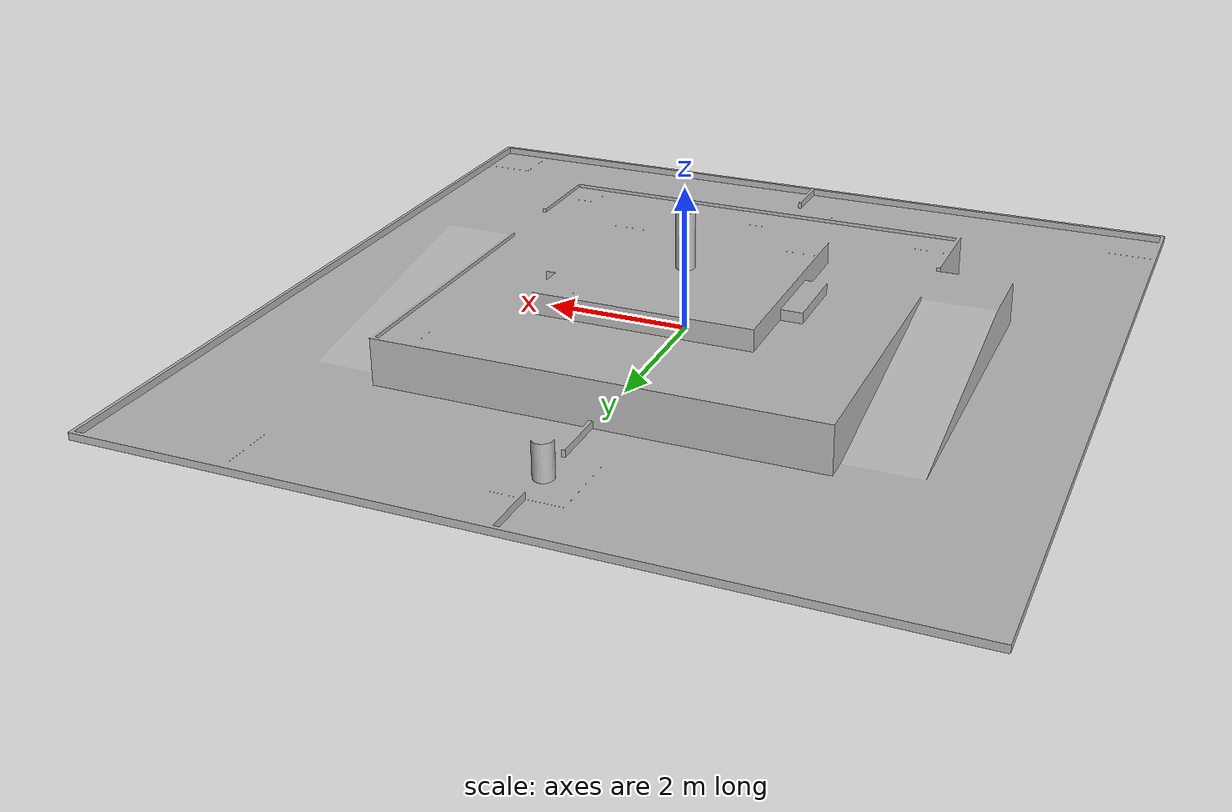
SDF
<?xml version="1.0"?>
<sdf version="1.5">
    <model name="abu2027">
      <pose>0 0 0  0 0 0</pose>
      <static>true</static>
      <link name="body">
        <visual name="visual">
          <geometry>
            <mesh>
              <uri>model://abu2027/meshes/ABU_Robocon_2027_Gamefield.obj</uri>
              <scale>0.01 0.01 0.01</scale>
            </mesh>
          </geometry>
        </visual>
        <collision name="collision">
          <geometry>
            <mesh>
              <uri>model://abu2027/meshes/ABU_Robocon_2027_Gamefield.obj</uri>
              <scale>0.01 0.01 0.01</scale>
            </mesh>
          </geometry>
        </collision>
      </link>
    </model>
</sdf>
